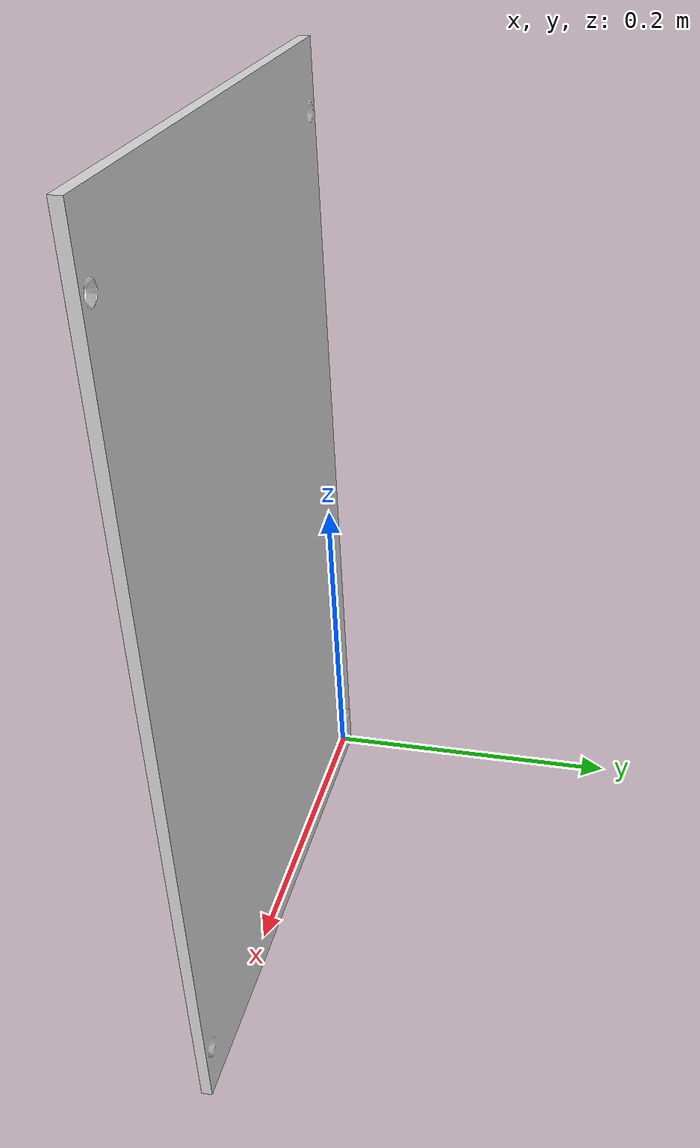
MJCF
<mujoco model="side_bottom_face">
  <default>
    <default class="visual">
      <geom group="2" type="mesh" contype="0" conaffinity="0"/>
    </default>
    <default class="collision">
      <geom group="3" type="mesh"/>
    </default>
  </default>
  <asset>
    <material name="mtl_side_bottom_face" specular="0.20000000000000004" shininess="1.0" rgba="0.85098039 0.85098039 0.85098039 1.0"/>
    <mesh file="side_bottom_face.obj"/>
  </asset>
  <worldbody>
    <body name="side_bottom_face">
      <geom material="mtl_side_bottom_face" mesh="side_bottom_face" class="visual"/>
      <geom mesh="side_bottom_face" class="collision"/>
    </body>
  </worldbody>
</mujoco>
